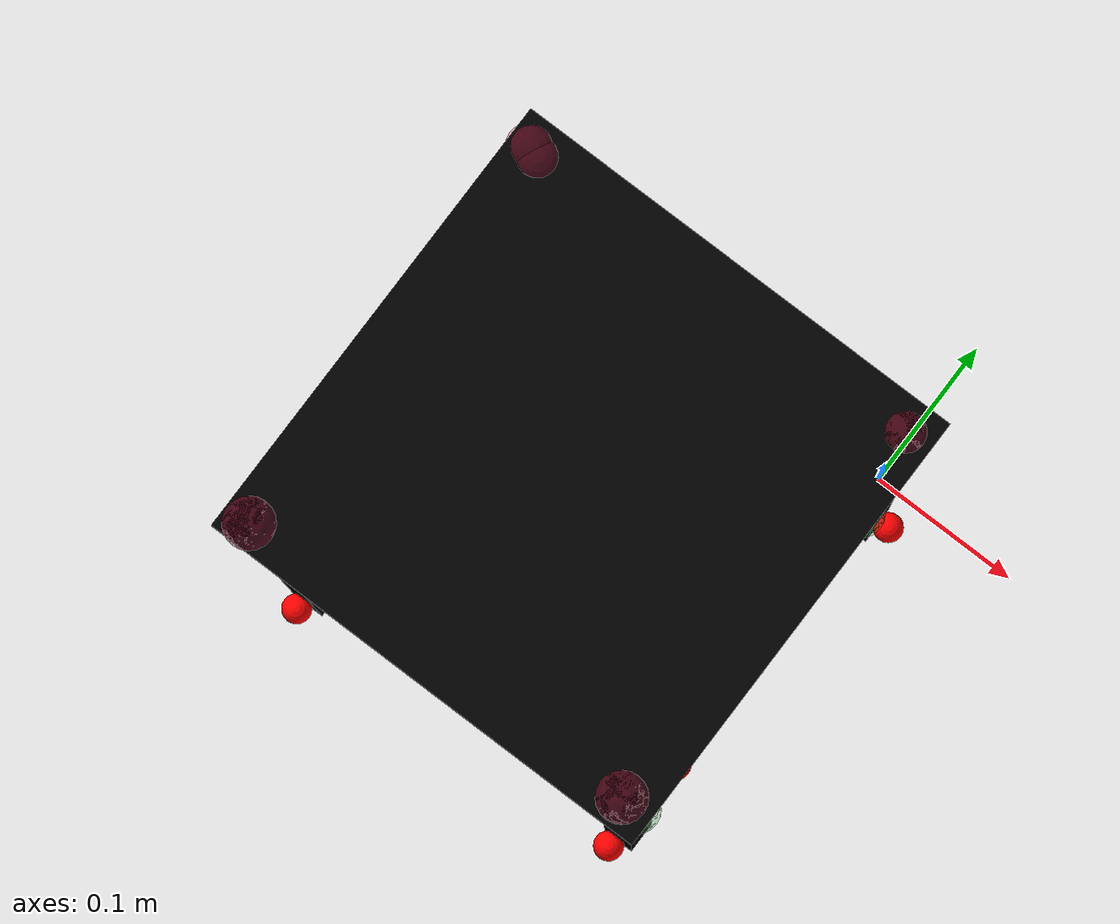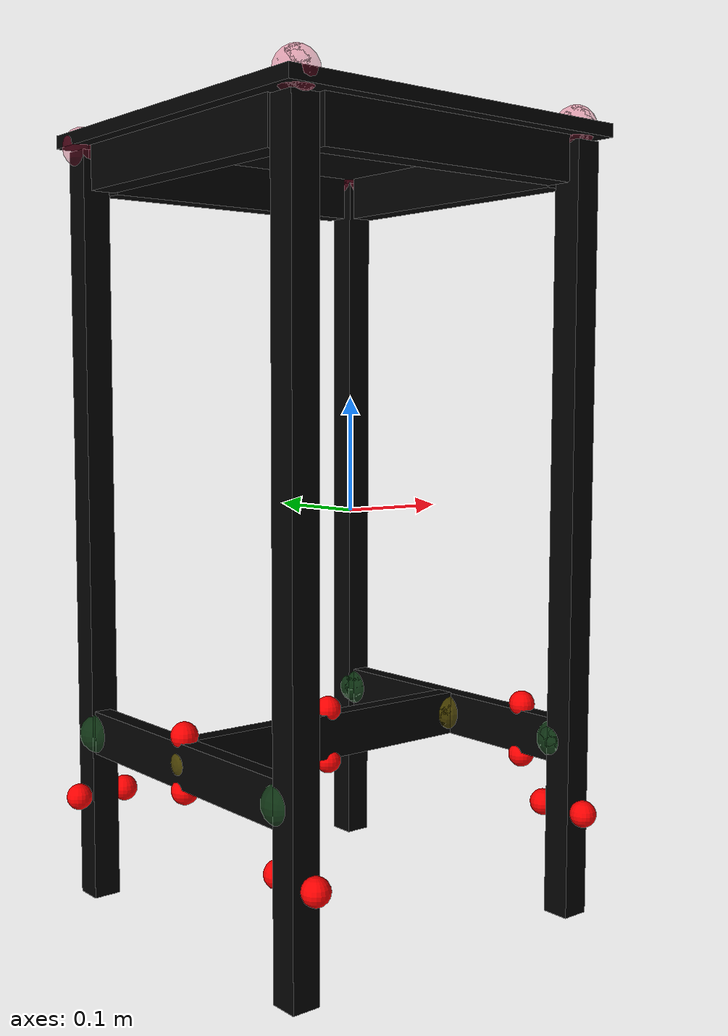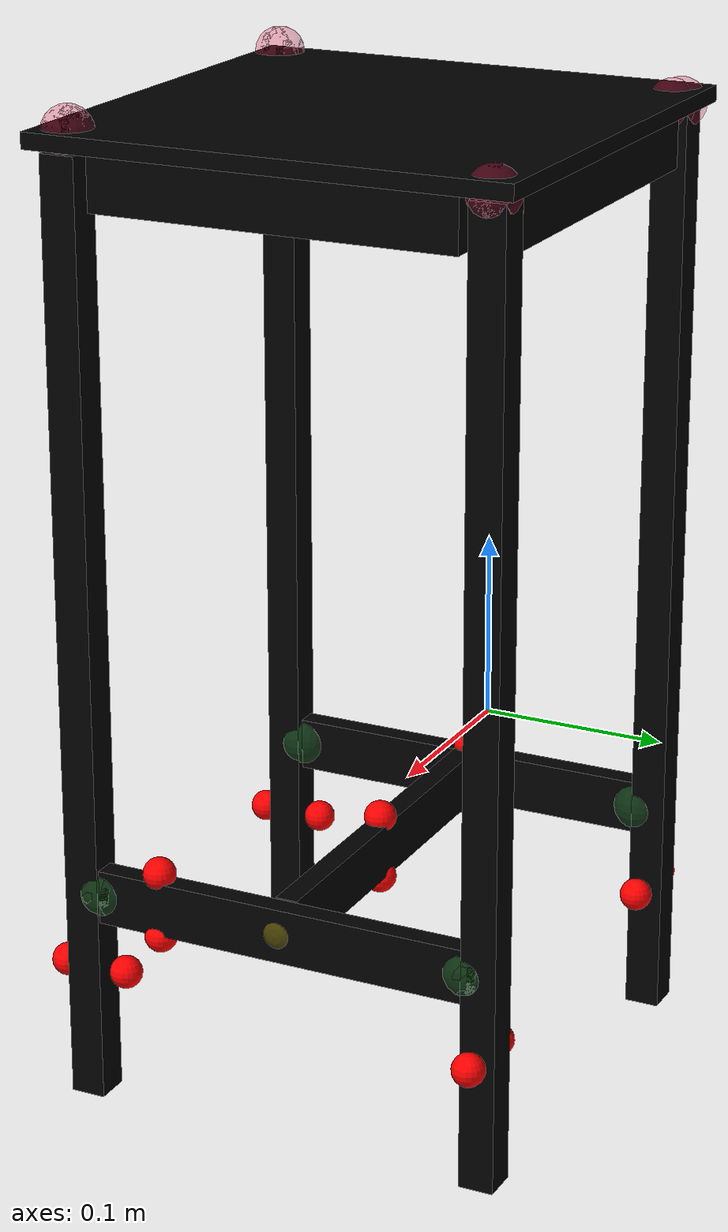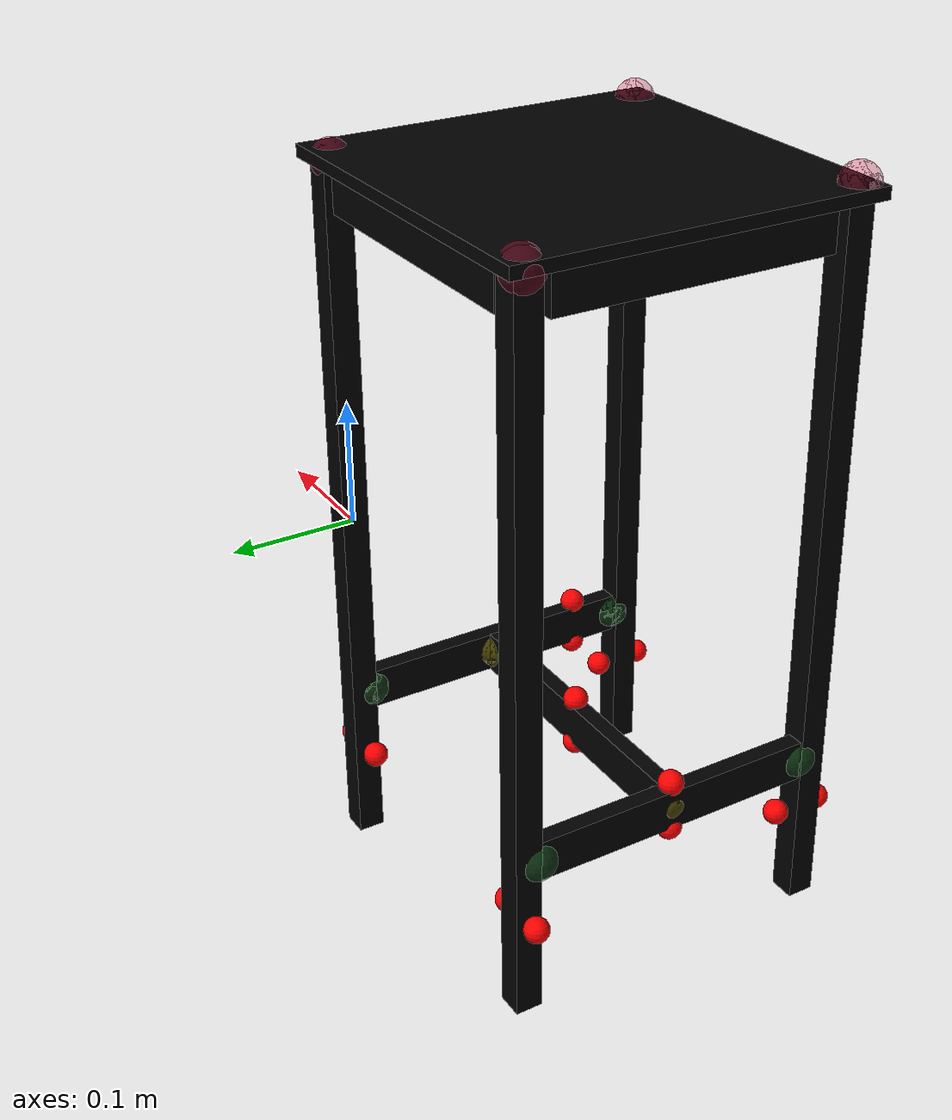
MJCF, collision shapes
<mujoco model="table_bjorkudden_0206">
    <custom>

        <numeric name="7_part7_initpos" data="0.2 0.09460705 0.02191628 0 0 -1 0"/>

        <numeric name="0_part0_initpos" data="0.53542564 0.5039378 0.01252427 0.5 -0.5 -0.5 0.5"/>
        <numeric name="6_part6_initpos" data="0.53406423 0.38586903 0.00894539 0.5 -0.5 -0.5 0.5"/>
        <numeric name="5_part5_initpos" data="-0.2433973 0.40326389 0.00891954 0.7 0 0.7 0"/>
        <numeric name="2_part2_initpos" data="-0.23966732 0.47204275 0.00891956 0.7 0 0.7 0"/>

        <numeric name="4_part4_initpos" data="0.54725019 0.1726845 0.01703871 0.71 0 0.71 0"/>
        <numeric name="3_part3_initpos" data="0.67266165 0.17964293 0.00679743 0.5 0.5 -0.5 -0.5"/>
        <numeric name="1_part1_initpos" data="0.46835845 0.1735415 0.01703871 0.71 0 0.71 0"/>

    </custom>
    <asset>
        <mesh file="table_bjorkudden_0206/0.stl" name="part0" scale="0.000768 0.000768 0.000768"/>
        <mesh file="table_bjorkudden_0206/7.stl" name="part7" scale="0.000768 0.000768 0.000768"/>
        <mesh file="table_bjorkudden_0206/6.stl" name="part6" scale="0.000768 0.000768 0.000768"/>
        <mesh file="table_bjorkudden_0206/5.stl" name="part5" scale="0.000768 0.000768 0.000768"/>
        <mesh file="table_bjorkudden_0206/4.stl" name="part4" scale="0.000768 0.000768 0.000768"/>
        <mesh file="table_bjorkudden_0206/3.stl" name="part3" scale="0.000768 0.000768 0.000768"/>
        <mesh file="table_bjorkudden_0206/2.stl" name="part2" scale="0.000768 0.000768 0.000768"/>
        <mesh file="table_bjorkudden_0206/1.stl" name="part1" scale="0.000768 0.000768 0.000768"/>
    </asset>
    <equality>
        <weld active="false" body1="5_part5" body2="7_part7" solimp="1 1 0.5" solref="0.01 0.3"/>
        <weld active="false" body1="2_part2" body2="7_part7" solimp="1 1 0.5" solref="0.01 0.3"/>
        <weld active="false" body1="0_part0" body2="7_part7" solimp="1 1 0.5" solref="0.01 0.3"/>
        <weld active="false" body1="6_part6" body2="7_part7" solimp="1 1 0.5" solref="0.01 0.3"/>
        <weld active="false" body1="0_part0" body2="4_part4" solimp="1 1 0.5" solref="0.01 0.3"/>
        <weld active="false" body1="1_part1" body2="3_part3" solimp="1 1 0.5" solref="0.01 0.3"/>
        <weld active="false" body1="6_part6" body2="1_part1" solimp="1 1 0.5" solref="0.01 0.3"/>
        <weld active="false" body1="4_part4" body2="3_part3" solimp="1 1 0.5" solref="0.01 0.3"/>
        <weld active="false" body1="6_part6" body2="4_part4" solimp="1 1 0.5" solref="0.01 0.3"/>
        <weld active="false" body1="5_part5" body2="4_part4" solimp="1 1 0.5" solref="0.01 0.3"/>
        <weld active="false" body1="5_part5" body2="1_part1" solimp="1 1 0.5" solref="0.01 0.3"/>
        <weld active="false" body1="0_part0" body2="1_part1" solimp="1 1 0.5" solref="0.01 0.3"/>
        <weld active="false" body1="2_part2" body2="4_part4" solimp="1 1 0.5" solref="0.01 0.3"/>
        <weld active="false" body1="2_part2" body2="1_part1" solimp="1 1 0.5" solref="0.01 0.3"/>
    </equality>
    <worldbody>
        <body name="0_part0" pos="3.0720000000000004e-10 0.0 7.680000000000001e-11" quat="1 0 0 0">
            <geom conaffinity="0" contype="0" density="0" mesh="part0" name="0_part0_mesh" pos="0.0 0.0 0.0"
                  rgba="0.82 0.71 0.55 1" type="mesh"/>
            <site name="0_part0_ltgt_site0" pos="0.02 0 -0.21" size="0.01 0.01 0.01" rgba="1 0 0 1" type="sphere"
                  group="1"></site>
            <site name="0_part0_rtgt_site0" pos="-0.02 0 -0.21" size="0.01 0.01 0.01" rgba="1 0 0 1" type="sphere"
                  group="1"></site>
            <site name="0_part0_horizontal_radius_site" pos="3.0720000000000004e-10 0.0 7.680000000000001e-11"
                  quat="1 0 0 0" rgba="0 0 0 0" size="0.01536"/>
            <site name="0_part0_top_site" pos="3.0720000000000004e-10 0.0 0.2877312000768" quat="1 0 0 0" rgba="0 0 0 0"
                  size="0.01536"/>
            <site name="0_part0_bottom_site" pos="3.0720000000000004e-10 0.0 -0.2877311999232" quat="1 0 0 0"
                  rgba="0 0 0 0" size="0.01536"/>
            <site name="0_part0_corner_site8" pos="-0.014630408217600002 0.0146304374784 0.2877312000768" quat="1 0 0 0"
                  rgba="0 0 0 0" size="0.01536"/>
            <site name="0_part0_corner_site7" pos="0.014630408908800002 0.0146304374784 0.2877312000768" quat="1 0 0 0"
                  rgba="0 0 0 0" size="0.01536"/>
            <site name="0_part0_corner_site6" pos="0.014630408908800002 -0.0146304374784 0.2877312000768" quat="1 0 0 0"
                  rgba="0 0 0 0" size="0.01536"/>
            <site name="0_part0_corner_site5" pos="-0.014630408217600002 -0.0146304374784 0.2877312000768"
                  quat="1 0 0 0" rgba="0 0 0 0" size="0.01536"/>
            <site name="0_part0_corner_site4" pos="-0.014630408217600002 0.0146304374784 -0.2877311999232"
                  quat="1 0 0 0" rgba="0 0 0 0" size="0.01536"/>
            <site name="0_part0_corner_site3" pos="0.014630408908800002 0.0146304374784 -0.2877311999232" quat="1 0 0 0"
                  rgba="0 0 0 0" size="0.01536"/>
            <site name="0_part0_corner_site2" pos="0.014630408908800002 -0.0146304374784 -0.2877311999232"
                  quat="1 0 0 0" rgba="0 0 0 0" size="0.01536"/>
            <site name="0_part0_corner_site1" pos="-0.014630408217600002 -0.0146304374784 -0.2877311999232"
                  quat="1 0 0 0" rgba="0 0 0 0" size="0.01536"/>
            <site name="leg-toppane,0,conn_site4" pos="0.0026112 0.0010752000000000001 0.28784640000000006"
                  quat="1 0 0 0" rgba="0.9019 0.0980 0.2941 0.3" size="0.01536"/>
            <site name="leg-siderail,0,180,conn_site3" pos="0.0017733811199999998 -0.0083712 -0.15820800000000002"
                  quat="0 0 -0.71 -0.71" rgba="0.2352 0.7058 0.2941 0.3" size="0.01536"/>
            <geom density="50" name="noviz_collision_0_part0_0"
                  pos="0.0018023654400000002 0.0017764915200000004 -0.003072" quat="1 0 0 0" rgba="0 0 0 0"
                  size="0.010752000000000001 0.010752000000000001 0.28800000000000003" solref="0.001 1" type="box"/>
        </body>
        <body name="7_part7" pos="-0.12679679662079998 -0.1267968750336 0.2755392000768" quat="1 0 0 0">
            <geom conaffinity="0" contype="0" density="0" mesh="part7" name="7_part7_mesh" pos="0.0 0.0 0.0"
                  rgba="0.82 0.71 0.55 1" type="mesh"/>
            <site name="7_part7_horizontal_radius_site" pos="0.0 0.0 0.0" quat="1 0 0 0" rgba="0 0 0 0" size="0.01536"/>
            <site name="7_part7_top_site" pos="0.0 0.0 0.0219456093696" quat="1 0 0 0" rgba="0 0 0 0" size="0.01536"/>
            <site name="7_part7_bottom_site" pos="0.0 0.0 -0.0219456093696" quat="1 0 0 0" rgba="0 0 0 0"
                  size="0.01536"/>
            <site name="7_part7_corner_site8" pos="-0.1463039970816 0.146304 0.0219456093696" quat="1 0 0 0"
                  rgba="0 0 0 0" size="0.01536"/>
            <site name="7_part7_corner_site7" pos="0.1463039970816 0.146304 0.0219456093696" quat="1 0 0 0"
                  rgba="0 0 0 0" size="0.01536"/>
            <site name="7_part7_corner_site6" pos="0.1463039970816 -0.146304 0.0219456093696" quat="1 0 0 0"
                  rgba="0 0 0 0" size="0.01536"/>
            <site name="7_part7_corner_site5" pos="-0.1463039970816 -0.146304 0.0219456093696" quat="1 0 0 0"
                  rgba="0 0 0 0" size="0.01536"/>
            <site name="7_part7_corner_site4" pos="-0.1463039970816 0.146304 -0.0219456093696" quat="1 0 0 0"
                  rgba="0 0 0 0" size="0.01536"/>
            <site name="7_part7_corner_site3" pos="0.1463039970816 0.146304 -0.0219456093696" quat="1 0 0 0"
                  rgba="0 0 0 0" size="0.01536"/>
            <site name="7_part7_corner_site2" pos="0.1463039970816 -0.146304 -0.0219456093696" quat="1 0 0 0"
                  rgba="0 0 0 0" size="0.01536"/>
            <site name="7_part7_corner_site1" pos="-0.1463039970816 -0.146304 -0.0219456093696" quat="1 0 0 0"
                  rgba="0 0 0 0" size="0.01536"/>
            <site name="toppane-leg,0,conn_site4" pos="0.129408 0.1278720768 0.01230719232" quat="1 0 0 0"
                  rgba="0.9019 0.0980 0.2941 0.3" size="0.01536"/>
            <site name="toppane-leg,0,conn_site3" pos="0.1261056 -0.1286399232 0.020064000000000002" quat="1 0 0 0"
                  rgba="0.9019 0.0980 0.2941 0.3" size="0.01536"/>
            <site name="toppane-leg,0,conn_site2" pos="-0.133248 0.12963847679999999 0.01230719232" quat="1 0 0 0"
                  rgba="0.9019 0.0980 0.2941 0.3" size="0.01536"/>
            <site name="toppane-leg,0,conn_site1" pos="-0.1302528 -0.13263352320000002 0.021984000000000004"
                  quat="1 0 0 0" rgba="0.9019 0.0980 0.2941 0.3" size="0.01536"/>
            <geom density="50" name="noviz_collision_7_part7_0" pos="0.0 -1.536e-08 0.01706880768" quat="1 0 0 0"
                  rgba="0 0 0 0" size="0.146304 0.146304 0.004877568" solref="0.001 1" type="box"/>
            <geom density="50" name="noviz_collision_7_part7_1" pos="-0.1267968 9.7536e-07 -0.004972807680000001"
                  quat="1 0 0 0" rgba="0 0 0 0" size="0.0097536 0.11135999999999999 0.016718123520000003"
                  solref="0.001 1" type="box"/>
            <geom density="50" name="noviz_collision_7_part7_2" pos="0.1267968 9.7536e-07 -0.004972807680000001"
                  quat="1 0 0 0" rgba="0 0 0 0" size="0.0097536 0.11135999999999999 0.016718123520000003"
                  solref="0.001 1" type="box"/>
            <geom density="50" name="noviz_collision_7_part7_3" pos="0.0 0.1267968768 -0.004972807680000001"
                  quat="1 0 0 0" rgba="0 0 0 0" size="0.11135999999999999 0.0097536 0.01671727872" solref="0.001 1"
                  type="box"/>
            <geom density="50" name="noviz_collision_7_part7_4" pos="-1.536e-08 -0.1267967232 -0.004972807680000001"
                  quat="1 0 0 0" rgba="0 0 0 0" size="0.11135999999999999 0.0097536 0.01671727872" solref="0.001 1"
                  type="box"/>
        </body>
        <body name="6_part6" pos="-0.2535935904 0.0 7.680000000000001e-11" quat="1 0 0 0">
            <geom conaffinity="0" contype="0" density="0" mesh="part6" name="6_part6_mesh" pos="0.0 0.0 0.0"
                  rgba="0.82 0.71 0.55 1" type="mesh"/>
            <site name="6_part6_ltgt_site0" pos="0.02 0 -0.21" size="0.01 0.01 0.01" rgba="1 0 0 1" type="sphere"
                  group="1"></site>
            <site name="6_part6_rtgt_site0" pos="-0.02 0 -0.21" size="0.01 0.01 0.01" rgba="1 0 0 1" type="sphere"
                  group="1"></site>
            <site name="6_part6_horizontal_radius_site" pos="2.304e-10 0.0 7.680000000000001e-11" quat="1 0 0 0"
                  rgba="0 0 0 0" size="0.01536"/>
            <site name="6_part6_top_site" pos="1.5360000000000002e-10 0.0 0.2877312000768" quat="1 0 0 0" rgba="0 0 0 0"
                  size="0.01536"/>
            <site name="6_part6_bottom_site" pos="1.5360000000000002e-10 0.0 -0.2877311999232" quat="1 0 0 0"
                  rgba="0 0 0 0" size="0.01536"/>
            <site name="6_part6_corner_site8" pos="-0.0146304004608 0.0146304374784 0.2877312000768" quat="1 0 0 0"
                  rgba="0 0 0 0" size="0.01536"/>
            <site name="6_part6_corner_site7" pos="0.014630400844799999 0.0146304374784 0.2877312000768" quat="1 0 0 0"
                  rgba="0 0 0 0" size="0.01536"/>
            <site name="6_part6_corner_site6" pos="0.014630400844799999 -0.0146304374784 0.2877312000768" quat="1 0 0 0"
                  rgba="0 0 0 0" size="0.01536"/>
            <site name="6_part6_corner_site5" pos="-0.0146304004608 -0.0146304374784 0.2877312000768" quat="1 0 0 0"
                  rgba="0 0 0 0" size="0.01536"/>
            <site name="6_part6_corner_site4" pos="-0.0146304004608 0.0146304374784 -0.2877311999232" quat="1 0 0 0"
                  rgba="0 0 0 0" size="0.01536"/>
            <site name="6_part6_corner_site3" pos="0.014630400844799999 0.0146304374784 -0.2877311999232" quat="1 0 0 0"
                  rgba="0 0 0 0" size="0.01536"/>
            <site name="6_part6_corner_site2" pos="0.014630400844799999 -0.0146304374784 -0.2877311999232"
                  quat="1 0 0 0" rgba="0 0 0 0" size="0.01536"/>
            <site name="6_part6_corner_site1" pos="-0.0146304004608 -0.0146304374784 -0.2877311999232" quat="1 0 0 0"
                  rgba="0 0 0 0" size="0.01536"/>
            <site name="leg-toppane,0,conn_site2" pos="0 0 0.28784640000000006" quat="1 0 0 0"
                  rgba="0.9019 0.0980 0.2941 0.3" size="0.01536"/>
            <site name="leg-siderail,0,180,conn_site2"
                  pos="-0.005990415360000001 -0.008601600000000001 -0.15974400000000002" quat="0.7071067 -0.7071068 0 0"
                  rgba="0.2352 0.7058 0.2941 0.3" size="0.01536"/>
            <geom density="50" name="noviz_collision_6_part6_0" pos="-0.0018023424 0.00177648384 -0.003072"
                  quat="1 0 0 0" rgba="0 0 0 0" size="0.010752000000000001 0.010752000000000001 0.28800000000000003"
                  solref="0.001 1" type="box"/>
        </body>
        <body name="5_part5" pos="-0.2535935904 -0.25359366435840003 7.680000000000001e-11" quat="1 0 0 0">
            <geom conaffinity="0" contype="0" density="0" mesh="part5" name="5_part5_mesh" pos="0.0 0.0 0.0"
                  rgba="0.82 0.71 0.55 1" type="mesh"/>
            <site name="5_part5_ltgt_site0" pos="0 0.02 -0.21" size="0.01 0.01 0.01" rgba="1 0 0 1" type="sphere"
                  group="1"></site>
            <site name="5_part5_rtgt_site0" pos="0 -0.02 -0.21" size="0.01 0.01 0.01" rgba="1 0 0 1" type="sphere"
                  group="1"></site>
            <site name="5_part5_horizontal_radius_site" pos="2.304e-10 -2.304e-10 7.680000000000001e-11" quat="1 0 0 0"
                  rgba="0 0 0 0" size="0.01536"/>
            <site name="5_part5_top_site" pos="1.5360000000000002e-10 -3.0720000000000004e-10 0.2877312000768"
                  quat="1 0 0 0" rgba="0 0 0 0" size="0.01536"/>
            <site name="5_part5_bottom_site" pos="1.5360000000000002e-10 -3.0720000000000004e-10 -0.2877311999232"
                  quat="1 0 0 0" rgba="0 0 0 0" size="0.01536"/>
            <site name="5_part5_corner_site8" pos="-0.0146304004608 0.014630429644799998 0.2877312000768" quat="1 0 0 0"
                  rgba="0 0 0 0" size="0.01536"/>
            <site name="5_part5_corner_site7" pos="0.014630400844799999 0.014630429644799998 0.2877312000768"
                  quat="1 0 0 0" rgba="0 0 0 0" size="0.01536"/>
            <site name="5_part5_corner_site6" pos="0.014630400844799999 -0.014630430182400003 0.2877312000768"
                  quat="1 0 0 0" rgba="0 0 0 0" size="0.01536"/>
            <site name="5_part5_corner_site5" pos="-0.0146304004608 -0.014630430182400003 0.2877312000768"
                  quat="1 0 0 0" rgba="0 0 0 0" size="0.01536"/>
            <site name="5_part5_corner_site4" pos="-0.0146304004608 0.014630429644799998 -0.2877311999232"
                  quat="1 0 0 0" rgba="0 0 0 0" size="0.01536"/>
            <site name="5_part5_corner_site3" pos="0.014630400844799999 0.014630429644799998 -0.2877311999232"
                  quat="1 0 0 0" rgba="0 0 0 0" size="0.01536"/>
            <site name="5_part5_corner_site2" pos="0.014630400844799999 -0.014630430182400003 -0.2877311999232"
                  quat="1 0 0 0" rgba="0 0 0 0" size="0.01536"/>
            <site name="5_part5_corner_site1" pos="-0.0146304004608 -0.014630430182400003 -0.2877311999232"
                  quat="1 0 0 0" rgba="0 0 0 0" size="0.01536"/>
            <site name="leg-toppane,0,conn_site1" pos="-0.0034560230399999997 -0.005836730880000001 0.2975232"
                  quat="1 0 0 0" rgba="0.9019 0.0980 0.2941 0.3" size="0.01536"/>
            <site name="leg-siderail,0,180,conn_site1" pos="-0.00407041536 0.00821765376 -0.1591296"
                  quat="0.7071067 0.7071068 0 0" rgba="0.2352 0.7058 0.2941 0.3" size="0.01536"/>
            <geom density="50" name="noviz_collision_5_part5_0"
                  pos="-0.0018023654400000002 -0.0017765145599999998 -0.003072" quat="1 0 0 0" rgba="0 0 0 0"
                  size="0.010752000000000001 0.010752000000000001 0.28800000000000003" solref="0.001 1" type="box"/>
        </body>
        <body name="4_part4" pos="-0.2571403571712 -0.12679683440640002 -0.15849600007680004" quat="1 0 0 0">
            <geom conaffinity="0" contype="0" density="0" mesh="part4" name="4_part4_mesh" pos="0.0 0.0 0.0"
                  rgba="0.82 0.71 0.55 1" type="mesh"/>
            <site name="4_part4_horizontal_radius_site" pos="0.0 -0.0 -1.5360000000000002e-10" quat="1 0 0 0"
                  rgba="0 0 0 0" size="0.01536"/>
            <site name="4_part4_top_site" pos="0.0 0.0 0.0170688" quat="1 0 0 0" rgba="0 0 0 0" size="0.01536"/>
            <site name="4_part4_bottom_site" pos="0.0 0.0 -0.0170688003072" quat="1 0 0 0" rgba="0 0 0 0"
                  size="0.01536"/>
            <site name="4_part4_ltgt_site0" pos="0 0 0.02" size="0.01 0.01 0.01" rgba="1 0 0 1" type="sphere"
                  group="1"></site>
            <site name="4_part4_rtgt_site0" pos="0 0 -0.02" size="0.01 0.01 0.01" rgba="1 0 0 1" type="sphere"
                  group="1"></site>
            <site name="4_part4_corner_site8" pos="-0.006827522457600001 0.11988061094400002 0.0170688" quat="1 0 0 0"
                  rgba="0 0 0 0" size="0.01536"/>
            <site name="4_part4_corner_site7" pos="0.006827522457600001 0.11988061094400002 0.0170688" quat="1 0 0 0"
                  rgba="0 0 0 0" size="0.01536"/>
            <site name="4_part4_corner_site6" pos="0.006827522457600001 -0.11988061094400002 0.0170688" quat="1 0 0 0"
                  rgba="0 0 0 0" size="0.01536"/>
            <site name="4_part4_corner_site5" pos="-0.006827522457600001 -0.11988061094400002 0.0170688" quat="1 0 0 0"
                  rgba="0 0 0 0" size="0.01536"/>
            <site name="4_part4_corner_site4" pos="-0.006827522457600001 0.11988061094400002 -0.0170688003072"
                  quat="1 0 0 0" rgba="0 0 0 0" size="0.01536"/>
            <site name="4_part4_corner_site3" pos="0.006827522457600001 0.11988061094400002 -0.0170688003072"
                  quat="1 0 0 0" rgba="0 0 0 0" size="0.01536"/>
            <site name="4_part4_corner_site2" pos="0.006827522457600001 -0.11988061094400002 -0.0170688003072"
                  quat="1 0 0 0" rgba="0 0 0 0" size="0.01536"/>
            <site name="4_part4_corner_site1" pos="-0.006827522457600001 -0.11988061094400002 -0.0170688003072"
                  quat="1 0 0 0" rgba="0 0 0 0" size="0.01536"/>
            <site name="siderail-midrail,0,180,conn_site1" pos="0.006234746879999999 0.0 0.0"
                  quat="0.7071067 0 -0.7071068 0" rgba="1.0 0.8823 0.0980 0.3" size="0.01536"/>
            <site name="siderail-leg,0,180,conn_site2" pos="0.00177337344 0.118272 -0.000288"
                  quat="0.7071067 -0.7071068 0 0" rgba="0.2352 0.7058 0.2941 0.3" size="0.01536"/>
            <site name="siderail-leg,0,180,conn_site1" pos="0.00177337344 -0.118272 0.000288"
                  quat="0.7071067 0.7071068 0 0" rgba="0.2352 0.7058 0.2941 0.3" size="0.01536"/>
            <geom density="50" name="noviz_collision_4_part4_0"
                  pos="2.3193600000000004e-06 9.3696e-07 -0.00035068416000000004" quat="1 0 0 0" rgba="0 0 0 0"
                  size="0.00682985472 0.11988149760000001 0.016718123520000003" solref="0.001 1" type="box"/>
        </body>
        <body name="3_part3" pos="-0.126796792704 -0.12679683440640002 -0.15849600007680004" quat="1 0 0 0">
            <geom conaffinity="0" contype="0" density="0" mesh="part3" name="3_part3_mesh" pos="0.0 0.0 0.0"
                  rgba="0.82 0.71 0.55 1" type="mesh"/>
            <site name="3_part3_ltgt_site0" pos="0 0 -0.02" size="0.01 0.01 0.01" rgba="1 0 0 1" type="sphere"
                  group="1"></site>
            <site name="3_part3_rtgt_site0" pos="0 0 0.02" size="0.01 0.01 0.01" rgba="1 0 0 1" type="sphere"
                  group="1"></site>
            <site name="3_part3_horizontal_radius_site" pos="-1.6127999999999998e-09 -0.0 -1.5360000000000002e-10"
                  quat="1 0 0 0" rgba="0 0 0 0" size="0.01536"/>
            <site name="3_part3_top_site" pos="-1.6127999999999998e-09 0.0 0.0170688" quat="1 0 0 0" rgba="0 0 0 0"
                  size="0.01536"/>
            <site name="3_part3_bottom_site" pos="-1.6127999999999998e-09 0.0 -0.0170688003072" quat="1 0 0 0"
                  rgba="0 0 0 0" size="0.01536"/>
            <site name="3_part3_corner_site8" pos="-0.123516046848 0.00682752 0.0170688" quat="1 0 0 0" rgba="0 0 0 0"
                  size="0.01536"/>
            <site name="3_part3_corner_site7" pos="0.12351604362240003 0.00682752 0.0170688" quat="1 0 0 0"
                  rgba="0 0 0 0" size="0.01536"/>
            <site name="3_part3_corner_site6" pos="0.12351604362240003 -0.00682752 0.0170688" quat="1 0 0 0"
                  rgba="0 0 0 0" size="0.01536"/>
            <site name="3_part3_corner_site5" pos="-0.123516046848 -0.00682752 0.0170688" quat="1 0 0 0" rgba="0 0 0 0"
                  size="0.01536"/>
            <site name="3_part3_corner_site4" pos="-0.123516046848 0.00682752 -0.0170688003072" quat="1 0 0 0"
                  rgba="0 0 0 0" size="0.01536"/>
            <site name="3_part3_corner_site3" pos="0.12351604362240003 0.00682752 -0.0170688003072" quat="1 0 0 0"
                  rgba="0 0 0 0" size="0.01536"/>
            <site name="3_part3_corner_site2" pos="0.12351604362240003 -0.00682752 -0.0170688003072" quat="1 0 0 0"
                  rgba="0 0 0 0" size="0.01536"/>
            <site name="3_part3_corner_site1" pos="-0.123516046848 -0.00682752 -0.0170688003072" quat="1 0 0 0"
                  rgba="0 0 0 0" size="0.01536"/>
            <site name="midrail-siderail,0,180,conn_site2" pos="0.12426240000000002 0.0 0.0"
                  quat="0.7071067 0 0.7071068 0" rgba="1.0 0.8823 0.0980 0.3" size="0.01536"/>
            <site name="midrail-siderail,0,180,conn_site1" pos="-0.1241088 0.0 0.0" quat="0.7071067 0 -0.7071068 0"
                  rgba="1.0 0.8823 0.0980 0.3" size="0.01536"/>
            <geom density="50" name="noviz_collision_3_part3_0" pos="0.0 0.0 3.247104e-05" quat="1 0 0 0" rgba="0 0 0 0"
                  size="0.1235160576 0.00682752 0.017101278719999998" solref="0.001 1" type="box"/>
        </body>
        <body name="2_part2" pos="3.0720000000000004e-10 -0.25359366435840003 7.680000000000001e-11" quat="1 0 0 0">
            <geom conaffinity="0" contype="0" density="0" mesh="part2" name="2_part2_mesh" pos="0.0 0.0 0.0"
                  rgba="0.82 0.71 0.55 1" type="mesh"/>
            <site name="2_part2_ltgt_site0" pos="0 0.02 -0.21" size="0.01 0.01 0.01" rgba="1 0 0 1" type="sphere"
                  group="1"></site>
            <site name="2_part2_rtgt_site0" pos="0 -0.02 -0.21" size="0.01 0.01 0.01" rgba="1 0 0 1" type="sphere"
                  group="1"></site>
            <site name="2_part2_horizontal_radius_site" pos="3.0720000000000004e-10 -2.304e-10 7.680000000000001e-11"
                  quat="1 0 0 0" rgba="0 0 0 0" size="0.01536"/>
            <site name="2_part2_top_site" pos="3.0720000000000004e-10 -3.0720000000000004e-10 0.2877312000768"
                  quat="1 0 0 0" rgba="0 0 0 0" size="0.01536"/>
            <site name="2_part2_bottom_site" pos="3.0720000000000004e-10 -3.0720000000000004e-10 -0.2877311999232"
                  quat="1 0 0 0" rgba="0 0 0 0" size="0.01536"/>
            <site name="2_part2_corner_site8" pos="-0.014630408217600002 0.014630429644799998 0.2877312000768"
                  quat="1 0 0 0" rgba="0 0 0 0" size="0.01536"/>
            <site name="2_part2_corner_site7" pos="0.014630408908800002 0.014630429644799998 0.2877312000768"
                  quat="1 0 0 0" rgba="0 0 0 0" size="0.01536"/>
            <site name="2_part2_corner_site6" pos="0.014630408908800002 -0.014630430182400003 0.2877312000768"
                  quat="1 0 0 0" rgba="0 0 0 0" size="0.01536"/>
            <site name="2_part2_corner_site5" pos="-0.014630408217600002 -0.014630430182400003 0.2877312000768"
                  quat="1 0 0 0" rgba="0 0 0 0" size="0.01536"/>
            <site name="2_part2_corner_site4" pos="-0.014630408217600002 0.014630429644799998 -0.2877311999232"
                  quat="1 0 0 0" rgba="0 0 0 0" size="0.01536"/>
            <site name="2_part2_corner_site3" pos="0.014630408908800002 0.014630429644799998 -0.2877311999232"
                  quat="1 0 0 0" rgba="0 0 0 0" size="0.01536"/>
            <site name="2_part2_corner_site2" pos="0.014630408908800002 -0.014630430182400003 -0.2877311999232"
                  quat="1 0 0 0" rgba="0 0 0 0" size="0.01536"/>
            <site name="2_part2_corner_site1" pos="-0.014630408217600002 -0.014630430182400003 -0.2877311999232"
                  quat="1 0 0 0" rgba="0 0 0 0" size="0.01536"/>
            <site name="leg-toppane,0,conn_site3"
                  pos="-0.0006912000000000001 -0.0018431462399999998 0.29560319999999995" quat="1 0 0 0"
                  rgba="0.9019 0.0980 0.2941 0.3" size="0.01536"/>
            <site name="leg-siderail,0,180,conn_site4" pos="0.0017733811199999998 0.00837126912 -0.15820800000000002"
                  quat="0.7071067 0.7071068 0 0" rgba="0.2352 0.7058 0.2941 0.3" size="0.01536"/>
            <geom density="50" name="noviz_collision_2_part2_0"
                  pos="0.0018023654400000002 -0.0017765145599999998 -0.003072" quat="1 0 0 0" rgba="0 0 0 0"
                  size="0.010752000000000001 0.010752000000000001 0.28800000000000003" solref="0.001 1" type="box"/>
        </body>
        <body name="1_part1" pos="0.0035467583232 -0.12679683440640002 -0.15849600007680004" quat="1 0 0 0">
            <geom conaffinity="0" contype="0" density="0" mesh="part1" name="1_part1_mesh" pos="0.0 0.0 0.0"
                  rgba="0.82 0.71 0.55 1" type="mesh"/>
            <site name="1_part1_ltgt_site0" pos="0 -0.08 0.02" size="0.01 0.01 0.01" rgba="1 0 0 1" type="sphere"
                  group="1"></site>
            <site name="1_part1_rtgt_site0" pos="0 -0.08 -0.02" size="0.01 0.01 0.01" rgba="1 0 0 1" type="sphere"
                  group="1"></site>
            <site name="1_part1_horizontal_radius_site" pos="7.680000000000001e-11 -0.0 -1.5360000000000002e-10"
                  quat="1 0 0 0" rgba="0 0 0 0" size="0.01536"/>
            <site name="1_part1_top_site" pos="0.0 0.0 0.0170688" quat="1 0 0 0" rgba="0 0 0 0" size="0.01536"/>
            <site name="1_part1_bottom_site" pos="0.0 0.0 -0.0170688003072" quat="1 0 0 0" rgba="0 0 0 0"
                  size="0.01536"/>
            <site name="1_part1_corner_site8" pos="-0.006827534208000001 0.11988061094400002 0.0170688" quat="1 0 0 0"
                  rgba="0 0 0 0" size="0.01536"/>
            <site name="1_part1_corner_site7" pos="0.006827534284799999 0.11988061094400002 0.0170688" quat="1 0 0 0"
                  rgba="0 0 0 0" size="0.01536"/>
            <site name="1_part1_corner_site6" pos="0.006827534284799999 -0.11988061094400002 0.0170688" quat="1 0 0 0"
                  rgba="0 0 0 0" size="0.01536"/>
            <site name="1_part1_corner_site5" pos="-0.006827534208000001 -0.11988061094400002 0.0170688" quat="1 0 0 0"
                  rgba="0 0 0 0" size="0.01536"/>
            <site name="1_part1_corner_site4" pos="-0.006827534208000001 0.11988061094400002 -0.0170688003072"
                  quat="1 0 0 0" rgba="0 0 0 0" size="0.01536"/>
            <site name="1_part1_corner_site3" pos="0.006827534284799999 0.11988061094400002 -0.0170688003072"
                  quat="1 0 0 0" rgba="0 0 0 0" size="0.01536"/>
            <site name="1_part1_corner_site2" pos="0.006827534284799999 -0.11988061094400002 -0.0170688003072"
                  quat="1 0 0 0" rgba="0 0 0 0" size="0.01536"/>
            <site name="1_part1_corner_site1" pos="-0.006827534208000001 -0.11988061094400002 -0.0170688003072"
                  quat="1 0 0 0" rgba="0 0 0 0" size="0.01536"/>
            <site name="siderail-leg,0,180,conn_site4" pos="-0.0017733811199999998 -0.11842552320000002 0.000288"
                  quat="0.7071067 0.7071068 0 0" rgba="0.2352 0.7058 0.2941 0.3" size="0.01536"/>
            <site name="siderail-leg,0,180,conn_site3" pos="-0.0017733811199999998 0.1184256768 0.000288"
                  quat="0.7071067 -0.7071068 0 0" rgba="0.2352 0.7058 0.2941 0.3" size="0.01536"/>
            <site name="siderail-midrail,0,180,conn_site2" pos="-0.0060811545600000004 0.0 0.0"
                  quat="0.7071067 0 0.7071068 0" rgba="1.0 0.8823 0.0980 0.3" size="0.01536"/>
            <geom density="50" name="noviz_collision_1_part1_0" pos="-2.31168e-06 0.0 -0.00035077632" quat="1 0 0 0"
                  rgba="0 0 0 0" size="0.006825223680000001 0.11988057600000003 0.01671802368" solref="0.001 1"
                  type="box"/>
        </body>
    </worldbody>
</mujoco>
